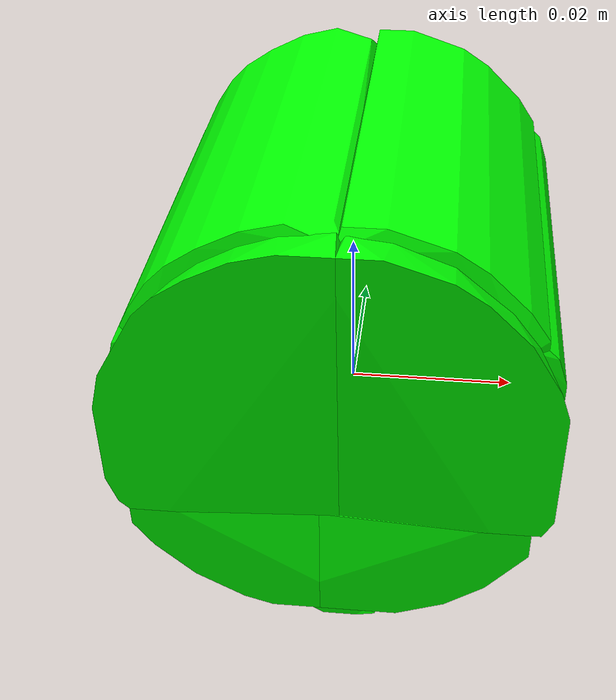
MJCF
<mujoco model="shapenet9-21">
  <asset>
    <mesh file="meshes/shapenet9-21/shapenet9-21_0.stl" name="shapenet9-21_0" scale="0.1 0.1 0.1"/>
    <mesh file="meshes/shapenet9-21/shapenet9-21_1.stl" name="shapenet9-21_1" scale="0.1 0.1 0.1"/>
    <mesh file="meshes/shapenet9-21/shapenet9-21_2.stl" name="shapenet9-21_2" scale="0.1 0.1 0.1"/>
    <mesh file="meshes/shapenet9-21/shapenet9-21_3.stl" name="shapenet9-21_3" scale="0.1 0.1 0.1"/>
    <mesh file="meshes/shapenet9-21/shapenet9-21_4.stl" name="shapenet9-21_4" scale="0.1 0.1 0.1"/>
    <mesh file="meshes/shapenet9-21/shapenet9-21_5.stl" name="shapenet9-21_5" scale="0.1 0.1 0.1"/>
    <mesh file="meshes/shapenet9-21/shapenet9-21_6.stl" name="shapenet9-21_6" scale="0.1 0.1 0.1"/>
    <mesh file="meshes/shapenet9-21/shapenet9-21_7.stl" name="shapenet9-21_7" scale="0.1 0.1 0.1"/>
    <mesh file="meshes/shapenet9-21/shapenet9-21_8.stl" name="shapenet9-21_8" scale="0.1 0.1 0.1"/>
    <mesh file="meshes/shapenet9-21/shapenet9-21_9.stl" name="shapenet9-21_9" scale="0.1 0.1 0.1"/>
    <mesh file="meshes/shapenet9-21/shapenet9-21_10.stl" name="shapenet9-21_10" scale="0.1 0.1 0.1"/>
    <mesh file="meshes/shapenet9-21/shapenet9-21_11.stl" name="shapenet9-21_11" scale="0.1 0.1 0.1"/>
    <mesh file="meshes/shapenet9-21/shapenet9-21_12.stl" name="shapenet9-21_12" scale="0.1 0.1 0.1"/>
    <mesh file="meshes/shapenet9-21/shapenet9-21_13.stl" name="shapenet9-21_13" scale="0.1 0.1 0.1"/>
  </asset>
  <worldbody>
    <body>
      <body name="collision">
        <geom pos="0 0 0" mesh="shapenet9-21_0" type="mesh" solimp="0.998 0.998 0.001" solref="0.001 1" density="100" friction="0.95 0.3 0.1" rgba="0 1 0 1" group="1" condim="4"/>
        <geom pos="0 0 0" mesh="shapenet9-21_1" type="mesh" solimp="0.998 0.998 0.001" solref="0.001 1" density="100" friction="0.95 0.3 0.1" rgba="0 1 0 1" group="1" condim="4"/>
        <geom pos="0 0 0" mesh="shapenet9-21_2" type="mesh" solimp="0.998 0.998 0.001" solref="0.001 1" density="100" friction="0.95 0.3 0.1" rgba="0 1 0 1" group="1" condim="4"/>
        <geom pos="0 0 0" mesh="shapenet9-21_3" type="mesh" solimp="0.998 0.998 0.001" solref="0.001 1" density="100" friction="0.95 0.3 0.1" rgba="0 1 0 1" group="1" condim="4"/>
        <geom pos="0 0 0" mesh="shapenet9-21_4" type="mesh" solimp="0.998 0.998 0.001" solref="0.001 1" density="100" friction="0.95 0.3 0.1" rgba="0 1 0 1" group="1" condim="4"/>
        <geom pos="0 0 0" mesh="shapenet9-21_5" type="mesh" solimp="0.998 0.998 0.001" solref="0.001 1" density="100" friction="0.95 0.3 0.1" rgba="0 1 0 1" group="1" condim="4"/>
        <geom pos="0 0 0" mesh="shapenet9-21_6" type="mesh" solimp="0.998 0.998 0.001" solref="0.001 1" density="100" friction="0.95 0.3 0.1" rgba="0 1 0 1" group="1" condim="4"/>
        <geom pos="0 0 0" mesh="shapenet9-21_7" type="mesh" solimp="0.998 0.998 0.001" solref="0.001 1" density="100" friction="0.95 0.3 0.1" rgba="0 1 0 1" group="1" condim="4"/>
        <geom pos="0 0 0" mesh="shapenet9-21_8" type="mesh" solimp="0.998 0.998 0.001" solref="0.001 1" density="100" friction="0.95 0.3 0.1" rgba="0 1 0 1" group="1" condim="4"/>
        <geom pos="0 0 0" mesh="shapenet9-21_9" type="mesh" solimp="0.998 0.998 0.001" solref="0.001 1" density="100" friction="0.95 0.3 0.1" rgba="0 1 0 1" group="1" condim="4"/>
        <geom pos="0 0 0" mesh="shapenet9-21_10" type="mesh" solimp="0.998 0.998 0.001" solref="0.001 1" density="100" friction="0.95 0.3 0.1" rgba="0 1 0 1" group="1" condim="4"/>
        <geom pos="0 0 0" mesh="shapenet9-21_11" type="mesh" solimp="0.998 0.998 0.001" solref="0.001 1" density="100" friction="0.95 0.3 0.1" rgba="0 1 0 1" group="1" condim="4"/>
        <geom pos="0 0 0" mesh="shapenet9-21_12" type="mesh" solimp="0.998 0.998 0.001" solref="0.001 1" density="100" friction="0.95 0.3 0.1" rgba="0 1 0 1" group="1" condim="4"/>
        <geom pos="0 0 0" mesh="shapenet9-21_13" type="mesh" solimp="0.998 0.998 0.001" solref="0.001 1" density="100" friction="0.95 0.3 0.1" rgba="0 1 0 1" group="1" condim="4"/>
      </body>
      <body name="visual">
        <geom pos="0 0 0" mesh="shapenet9-21_0" type="mesh" rgba="0 1 0 1" conaffinity="0" contype="0" group="0" mass="0.0001"/>
        <geom pos="0 0 0" mesh="shapenet9-21_1" type="mesh" rgba="0 1 0 1" conaffinity="0" contype="0" group="0" mass="0.0001"/>
        <geom pos="0 0 0" mesh="shapenet9-21_2" type="mesh" rgba="0 1 0 1" conaffinity="0" contype="0" group="0" mass="0.0001"/>
        <geom pos="0 0 0" mesh="shapenet9-21_3" type="mesh" rgba="0 1 0 1" conaffinity="0" contype="0" group="0" mass="0.0001"/>
        <geom pos="0 0 0" mesh="shapenet9-21_4" type="mesh" rgba="0 1 0 1" conaffinity="0" contype="0" group="0" mass="0.0001"/>
        <geom pos="0 0 0" mesh="shapenet9-21_5" type="mesh" rgba="0 1 0 1" conaffinity="0" contype="0" group="0" mass="0.0001"/>
        <geom pos="0 0 0" mesh="shapenet9-21_6" type="mesh" rgba="0 1 0 1" conaffinity="0" contype="0" group="0" mass="0.0001"/>
        <geom pos="0 0 0" mesh="shapenet9-21_7" type="mesh" rgba="0 1 0 1" conaffinity="0" contype="0" group="0" mass="0.0001"/>
        <geom pos="0 0 0" mesh="shapenet9-21_8" type="mesh" rgba="0 1 0 1" conaffinity="0" contype="0" group="0" mass="0.0001"/>
        <geom pos="0 0 0" mesh="shapenet9-21_9" type="mesh" rgba="0 1 0 1" conaffinity="0" contype="0" group="0" mass="0.0001"/>
        <geom pos="0 0 0" mesh="shapenet9-21_10" type="mesh" rgba="0 1 0 1" conaffinity="0" contype="0" group="0" mass="0.0001"/>
        <geom pos="0 0 0" mesh="shapenet9-21_11" type="mesh" rgba="0 1 0 1" conaffinity="0" contype="0" group="0" mass="0.0001"/>
        <geom pos="0 0 0" mesh="shapenet9-21_12" type="mesh" rgba="0 1 0 1" conaffinity="0" contype="0" group="0" mass="0.0001"/>
        <geom pos="0 0 0" mesh="shapenet9-21_13" type="mesh" rgba="0 1 0 1" conaffinity="0" contype="0" group="0" mass="0.0001"/>
      </body>
      <site rgba="0 0 0 0" size="0.005" pos="0 0 -0.06" name="bottom_site"/>
      <site rgba="0 0 0 0" size="0.005" pos="0 0 0.04" name="top_site"/>
      <site rgba="0 0 0 0" size="0.005" pos="0.025 0.025 0" name="horizontal_radius_site"/>
    </body>
  </worldbody>
</mujoco>
